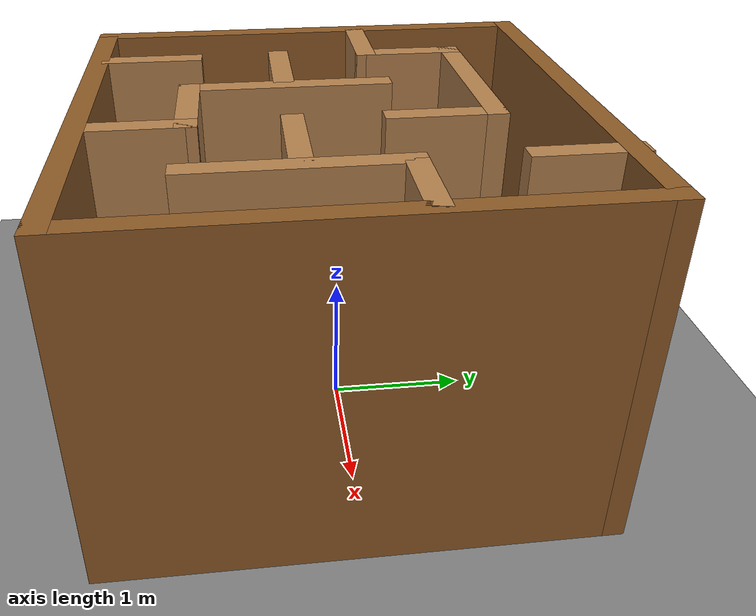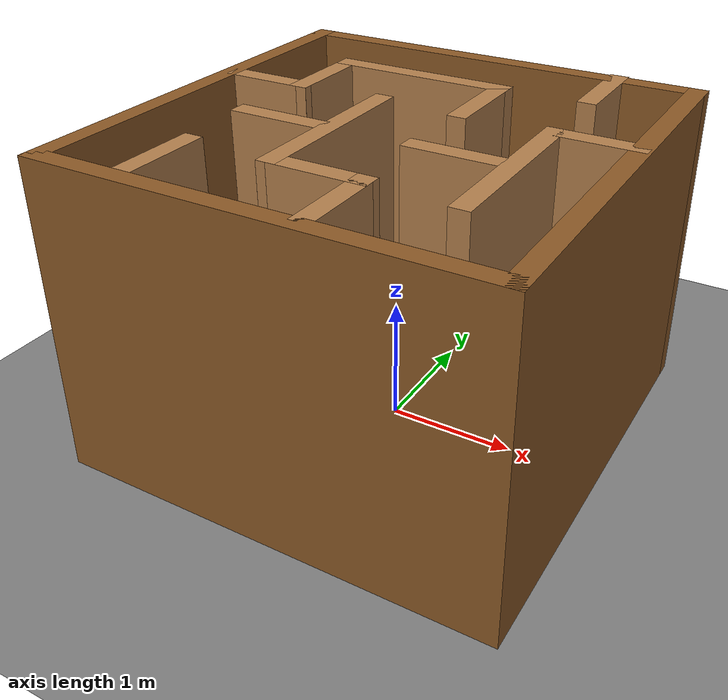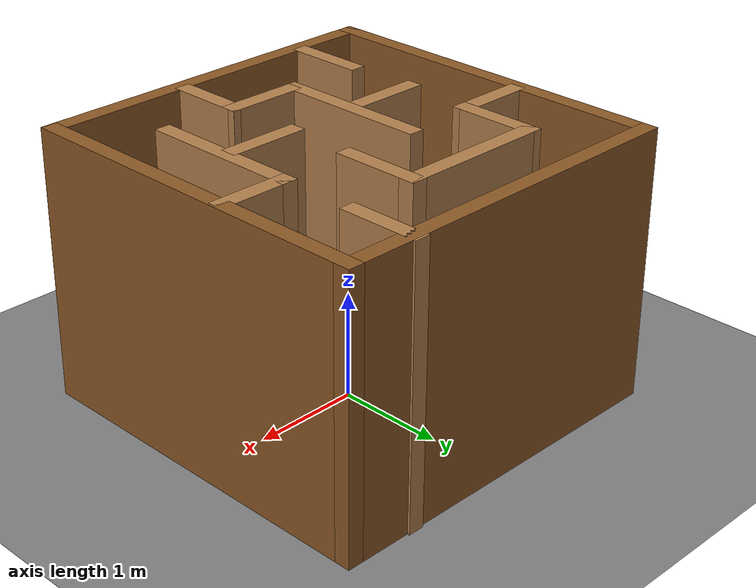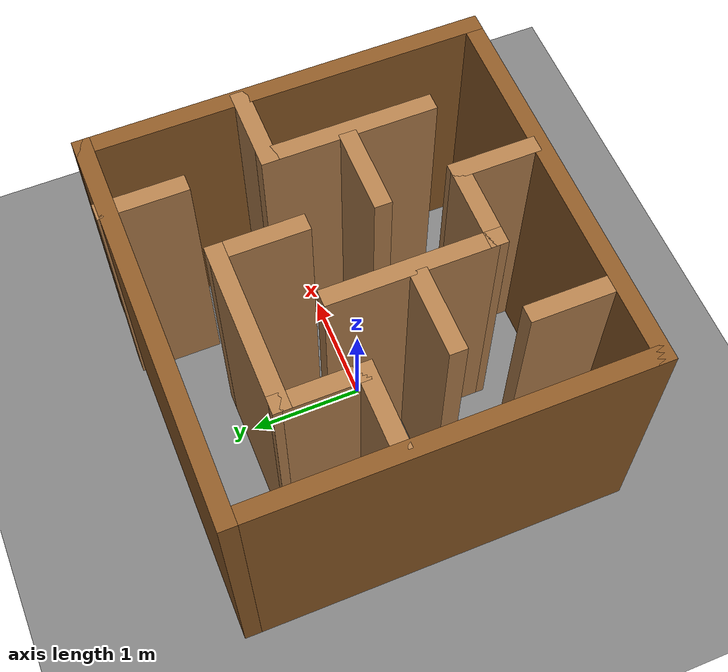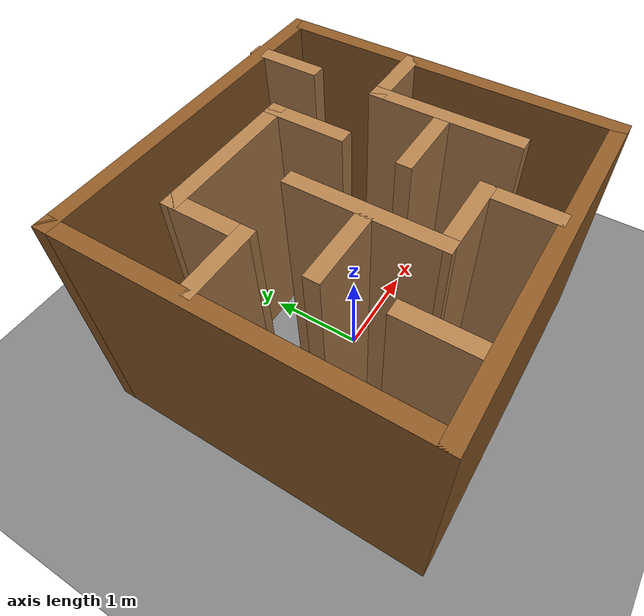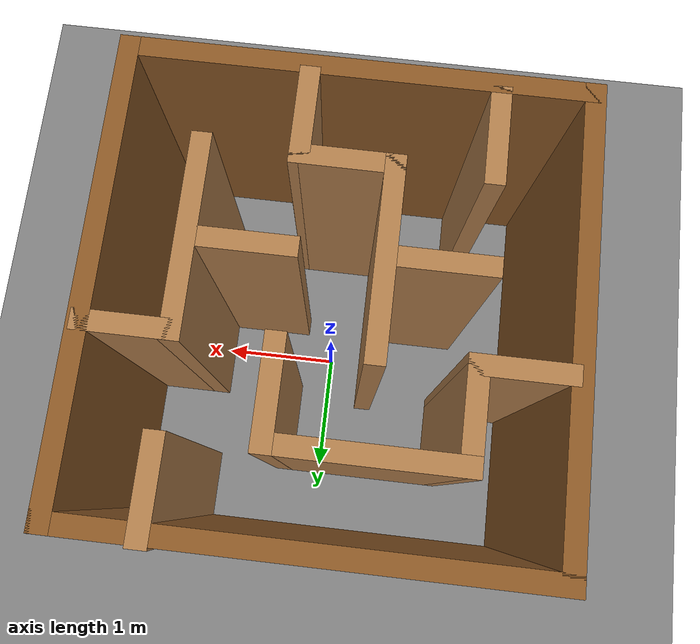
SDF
<sdf version="1.7">
 <world name="default">
  <light name="sun" type="directional">
   <pose>0 0 10 0 -0 0</pose>
   <diffuse>0.8 0.8 0.8 1</diffuse>
   <specular>0.2 0.2 0.2 1</specular>
   <attenuation>
    <range>1000</range>
    <constant>0.9</constant>
    <linear>0.01</linear>
    <quadratic>0.001</quadratic>
   </attenuation>
   <direction>-0.5 0.1 -0.9</direction>
   <spot><inner_angle>0</inner_angle><outer_angle>0</outer_angle><falloff>0</falloff></spot>
  </light>
  <model name="ground_plane">
   <static>1</static>
   <link name="link">
    <collision name="collision">
     <geometry><plane><normal>0 0 1</normal><size>100 100</size></plane></geometry>
     <surface><friction><ode><mu>100</mu><mu2>50</mu2></ode></friction></surface>
    </collision>
    <visual name="visual">
     <cast_shadows>0</cast_shadows>
     <geometry><plane><normal>0 0 1</normal><size>100 100</size></plane></geometry>
     <material>
      <ambient>0.5 0.5 0.5 1</ambient>
      <diffuse>0.5 0.5 0.5 1</diffuse>
      <specular>0.1 0.1 0.1 1</specular>
     </material>
    </visual>
   </link>
  </model>
  <gravity>0 0 -9.8</gravity>
  <magnetic_field>6e-06 2.3e-05 -4.2e-05</magnetic_field>
  <atmosphere type="adiabatic"/>
  <physics type="ode">
   <max_step_size>0.001</max_step_size>
   <real_time_factor>1</real_time_factor>
   <real_time_update_rate>1000</real_time_update_rate>
  </physics>
  <scene><ambient>0.4 0.4 0.4 1</ambient><background>0.7 0.7 0.7 1</background><shadows>1</shadows></scene>
  <audio><device>default</device></audio>
  <spherical_coordinates>
   <surface_model>EARTH_WGS84</surface_model>
   <latitude_deg>0</latitude_deg>
   <longitude_deg>0</longitude_deg>
   <elevation>0</elevation>
   <heading_deg>0</heading_deg>
  </spherical_coordinates>
  <model name="maze">
   <pose>-0.02811 -0.007464 0 0 -0 0</pose>
   <link name="Wall_1">
    <collision name="Wall_1_Collision">
     <geometry><box><size>3.5 0.15 2.5</size></box></geometry>
     <pose>0 0 1.25 0 -0 0</pose>
    </collision>
    <visual name="Wall_1_Visual">
     <pose>0 0 1.25 0 -0 0</pose>
     <geometry><box><size>3.5 0.15 2.5</size></box></geometry>
     <material>
      <ambient>0.55 0.35 0.15 1</ambient>
      <diffuse>0.55 0.35 0.15 1</diffuse>
      <specular>0.1 0.1 0.1 1</specular>
     </material>
     <meta><layer>0</layer></meta>
    </visual>
    <pose>-0 -1.68548 0 0 -0 0</pose>
   </link>
   <link name="Wall_10">
    <collision name="Wall_10_Collision">
     <geometry><box><size>1.5 0.15 2.5</size></box></geometry>
     <pose>0 0 1.25 0 -0 0</pose>
    </collision>
    <visual name="Wall_10_Visual">
     <pose>0 0 1.25 0 -0 0</pose>
     <geometry><box><size>1.5 0.15 2.5</size></box></geometry>
     <material>
      <ambient>0.7 0.5 0.3 1</ambient>
      <diffuse>0.7 0.5 0.3 1</diffuse>
      <specular>0.1 0.1 0.1 1</specular>
     </material>
     <meta><layer>0</layer></meta>
    </visual>
    <pose>1.05454 -0.326477 0 0 -0 1.5708</pose>
   </link>
   <link name="Wall_11">
    <collision name="Wall_11_Collision">
     <geometry><box><size>0.75 0.15 2.5</size></box></geometry>
     <pose>0 0 1.25 0 -0 0</pose>
    </collision>
    <visual name="Wall_11_Visual">
     <pose>0 0 1.25 0 -0 0</pose>
     <geometry><box><size>0.75 0.15 2.5</size></box></geometry>
     <material>
      <ambient>0.7 0.5 0.3 1</ambient>
      <diffuse>0.7 0.5 0.3 1</diffuse>
      <specular>0.1 0.1 0.1 1</specular>
     </material>
     <meta><layer>0</layer></meta>
    </visual>
    <pose>1.35454 0.348522 0 0 -0 0</pose>
   </link>
   <link name="Wall_13">
    <collision name="Wall_13_Collision">
     <geometry><box><size>0.75 0.15 2.5</size></box></geometry>
     <pose>0 0 1.25 0 -0 0</pose>
    </collision>
    <visual name="Wall_13_Visual">
     <pose>0 0 1.25 0 -0 0</pose>
     <geometry><box><size>0.75 0.15 2.5</size></box></geometry>
     <material>
      <ambient>0.7 0.5 0.3 1</ambient>
      <diffuse>0.7 0.5 0.3 1</diffuse>
      <specular>0.1 0.1 0.1 1</specular>
     </material>
     <meta><layer>0</layer></meta>
    </visual>
    <pose>0.650193 -0.314521 0 0 -0 0</pose>
   </link>
   <link name="Wall_16">
    <collision name="Wall_16_Collision">
     <geometry><box><size>0.816384 0.15 2.5</size></box></geometry>
     <pose>0 0 1.25 0 -0 0</pose>
    </collision>
    <visual name="Wall_16_Visual">
     <pose>0 0 1.25 0 -0 0</pose>
     <geometry><box><size>0.816384 0.15 2.5</size></box></geometry>
     <material>
      <ambient>0.7 0.5 0.3 1</ambient>
      <diffuse>0.7 0.5 0.3 1</diffuse>
      <specular>0.1 0.1 0.1 1</specular>
     </material>
     <meta><layer>0</layer></meta>
    </visual>
    <pose>0.354421 0.683647 0 0 -0 1.5708</pose>
   </link>
   <link name="Wall_17">
    <collision name="Wall_17_Collision">
     <geometry><box><size>1.5 0.15 2.5</size></box></geometry>
     <pose>0 0 1.25 0 -0 0</pose>
    </collision>
    <visual name="Wall_17_Visual">
     <pose>0 0 1.25 0 -0 0</pose>
     <geometry><box><size>1.5 0.15 2.5</size></box></geometry>
     <material>
      <ambient>0.7 0.5 0.3 1</ambient>
      <diffuse>0.7 0.5 0.3 1</diffuse>
      <specular>0.1 0.1 0.1 1</specular>
     </material>
     <meta><layer>0</layer></meta>
    </visual>
    <pose>-0.320579 1.01676 0 0 -0 3.14159</pose>
   </link>
   <link name="Wall_18">
    <collision name="Wall_18_Collision">
     <geometry><box><size>0.81633 0.15 2.5</size></box></geometry>
     <pose>0 0 1.25 0 -0 0</pose>
    </collision>
    <visual name="Wall_18_Visual">
     <pose>0 0 1.25 0 -0 0</pose>
     <geometry><box><size>0.81633 0.15 2.5</size></box></geometry>
     <material>
      <ambient>0.7 0.5 0.3 1</ambient>
      <diffuse>0.7 0.5 0.3 1</diffuse>
      <specular>0.1 0.1 0.1 1</specular>
     </material>
     <meta><layer>0</layer></meta>
    </visual>
    <pose>-0.99674 0.683647 0 0 -0 -1.57428</pose>
   </link>
   <link name="Wall_19">
    <collision name="Wall_19_Collision">
     <geometry><box><size>0.75 0.15 2.5</size></box></geometry>
     <pose>0 0 1.25 0 -0 0</pose>
    </collision>
    <visual name="Wall_19_Visual">
     <pose>0 0 1.25 0 -0 0</pose>
     <geometry><box><size>0.75 0.15 2.5</size></box></geometry>
     <material>
      <ambient>0.7 0.5 0.3 1</ambient>
      <diffuse>0.7 0.5 0.3 1</diffuse>
      <specular>0.1 0.1 0.1 1</specular>
     </material>
     <meta><layer>0</layer></meta>
    </visual>
    <pose>-1.2979 0.350539 0 0 -0 3.14159</pose>
   </link>
   <link name="Wall_2">
    <collision name="Wall_2_Collision">
     <geometry><box><size>3.5 0.15 2.5</size></box></geometry>
     <pose>0 0 1.25 0 -0 0</pose>
    </collision>
    <visual name="Wall_2_Visual">
     <pose>0 0 1.25 0 -0 0</pose>
     <geometry><box><size>3.5 0.15 2.5</size></box></geometry>
     <material>
      <ambient>0.55 0.35 0.15 1</ambient>
      <diffuse>0.55 0.35 0.15 1</diffuse>
      <specular>0.1 0.1 0.1 1</specular>
     </material>
     <meta><layer>0</layer></meta>
    </visual>
    <pose>1.675 -0.010479 0 0 -0 1.5708</pose>
   </link>
   <link name="Wall_21">
    <collision name="Wall_21_Collision">
     <geometry><box><size>1.5 0.15 2.5</size></box></geometry>
     <pose>0 0 1.25 0 -0 0</pose>
    </collision>
    <visual name="Wall_21_Visual">
     <pose>0 0 1.25 0 -0 0</pose>
     <geometry><box><size>1.5 0.15 2.5</size></box></geometry>
     <material>
      <ambient>0.7 0.5 0.3 1</ambient>
      <diffuse>0.7 0.5 0.3 1</diffuse>
      <specular>0.1 0.1 0.1 1</specular>
     </material>
     <meta><layer>0</layer></meta>
    </visual>
    <pose>-0.316768 -0.314518 0 0 -0 -1.5708</pose>
   </link>
   <link name="Wall_22">
    <collision name="Wall_22_Collision">
     <geometry><box><size>0.826164 0.15 2.5</size></box></geometry>
     <pose>0 0 1.25 0 -0 0</pose>
    </collision>
    <visual name="Wall_22_Visual">
     <pose>0 0 1.25 0 -0 0</pose>
     <geometry><box><size>0.826164 0.15 2.5</size></box></geometry>
     <material>
      <ambient>0.7 0.5 0.3 1</ambient>
      <diffuse>0.7 0.5 0.3 1</diffuse>
      <specular>0.1 0.1 0.1 1</specular>
     </material>
     <meta><layer>0</layer></meta>
    </visual>
    <pose>0.021312 -0.990678 0 0 -0 -0.003432</pose>
   </link>
   <link name="Wall_23">
    <collision name="Wall_23_Collision">
     <geometry><box><size>0.75 0.15 2.5</size></box></geometry>
     <pose>0 0 1.25 0 -0 0</pose>
    </collision>
    <visual name="Wall_23_Visual">
     <pose>0 0 1.25 0 -0 0</pose>
     <geometry><box><size>0.75 0.15 2.5</size></box></geometry>
     <material>
      <ambient>0.7 0.5 0.3 1</ambient>
      <diffuse>0.7 0.5 0.3 1</diffuse>
      <specular>0.1 0.1 0.1 1</specular>
     </material>
     <meta><layer>0</layer></meta>
    </visual>
    <pose>0.359393 -1.29184 0 0 -0 -1.5708</pose>
   </link>
   <link name="Wall_25">
    <collision name="Wall_25_Collision">
     <geometry><box><size>0.75 0.15 2.5</size></box></geometry>
     <pose>0 0 1.25 0 -0 0</pose>
    </collision>
    <visual name="Wall_25_Visual">
     <pose>0 0 1.25 0 -0 0</pose>
     <geometry><box><size>0.75 0.15 2.5</size></box></geometry>
     <material>
      <ambient>0.7 0.5 0.3 1</ambient>
      <diffuse>0.7 0.5 0.3 1</diffuse>
      <specular>0.1 0.1 0.1 1</specular>
     </material>
     <meta><layer>0</layer></meta>
    </visual>
    <pose>-0.732702 -0.325621 0 0 -0 0</pose>
   </link>
   <link name="Wall_3">
    <collision name="Wall_3_Collision">
     <geometry><box><size>3.5 0.15 2.5</size></box></geometry>
     <pose>0 0 1.25 0 -0 0</pose>
    </collision>
    <visual name="Wall_3_Visual">
     <pose>0 0 1.25 0 -0 0</pose>
     <geometry><box><size>3.5 0.15 2.5</size></box></geometry>
     <material>
      <ambient>0.55 0.35 0.15 1</ambient>
      <diffuse>0.55 0.35 0.15 1</diffuse>
      <specular>0.1 0.1 0.1 1</specular>
     </material>
     <meta><layer>0</layer></meta>
    </visual>
    <pose>-0 1.66452 0 0 -0 3.14159</pose>
   </link>
   <link name="Wall_4">
    <collision name="Wall_4_Collision">
     <geometry><box><size>3.5 0.15 2.5</size></box></geometry>
     <pose>0 0 1.25 0 -0 0</pose>
    </collision>
    <visual name="Wall_4_Visual">
     <pose>0 0 1.25 0 -0 0</pose>
     <geometry><box><size>3.5 0.15 2.5</size></box></geometry>
     <material>
      <ambient>0.55 0.35 0.15 1</ambient>
      <diffuse>0.55 0.35 0.15 1</diffuse>
      <specular>0.1 0.1 0.1 1</specular>
     </material>
     <meta><layer>0</layer></meta>
    </visual>
    <pose>-1.675 -0.010479 0 0 -0 -1.5708</pose>
   </link>
   <link name="Wall_6">
    <collision name="Wall_6_Collision">
     <geometry><box><size>0.75 0.15 2.5</size></box></geometry>
     <pose>0 0 1.25 0 -0 0</pose>
    </collision>
    <visual name="Wall_6_Visual">
     <pose>0 0 1.25 0 -0 0</pose>
     <geometry><box><size>0.75 0.15 2.5</size></box></geometry>
     <material>
      <ambient>0.7 0.5 0.3 1</ambient>
      <diffuse>0.7 0.5 0.3 1</diffuse>
      <specular>0.1 0.1 0.1 1</specular>
     </material>
     <meta><layer>0</layer></meta>
    </visual>
    <pose>-1.01091 -1.28851 0 0 -0 -1.5708</pose>
   </link>
   <link name="Wall_8">
    <collision name="Wall_8_Collision">
     <geometry><box><size>0.75 0.15 2.5</size></box></geometry>
     <pose>0 0 1.25 0 -0 0</pose>
    </collision>
    <visual name="Wall_8_Visual">
     <pose>0 0 1.25 0 -0 0</pose>
     <geometry><box><size>0.75 0.15 2.5</size></box></geometry>
     <material>
      <ambient>0.7 0.5 0.3 1</ambient>
      <diffuse>0.7 0.5 0.3 1</diffuse>
      <specular>0.1 0.1 0.1 1</specular>
     </material>
     <meta><layer>0</layer></meta>
    </visual>
    <pose>1.04584 1.38548 0 0 -0 1.5708</pose>
   </link>
   <static>1</static>
  </model>
 </world>
</sdf>
